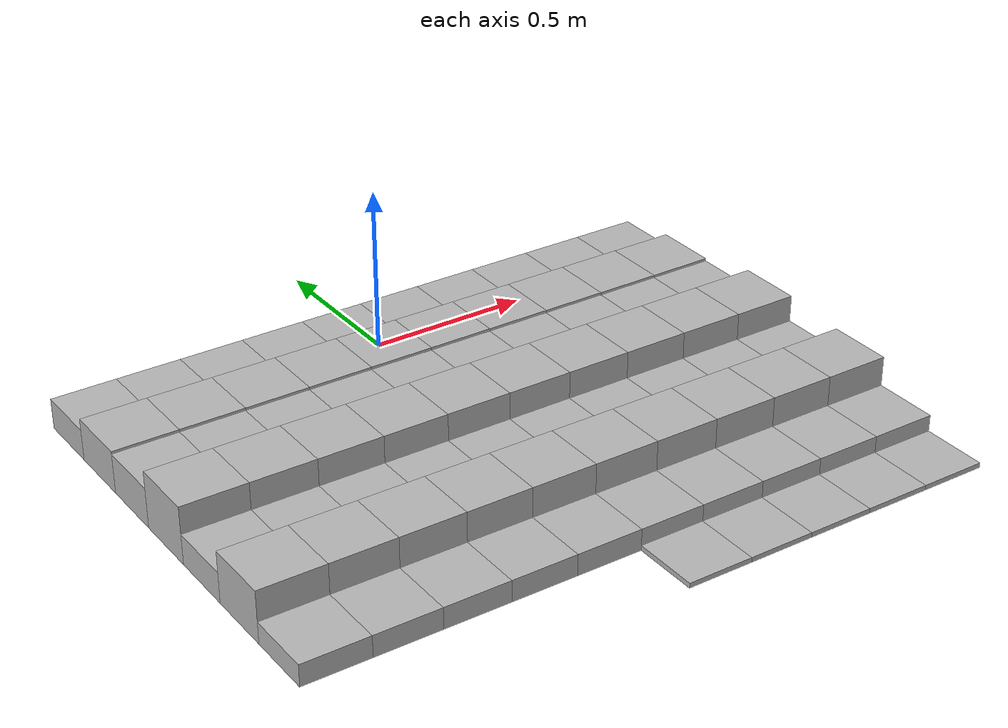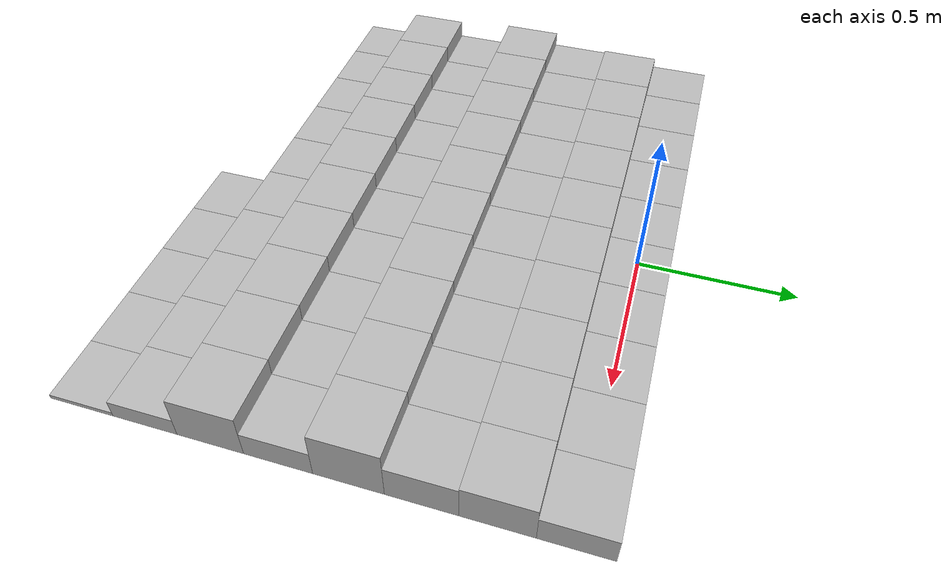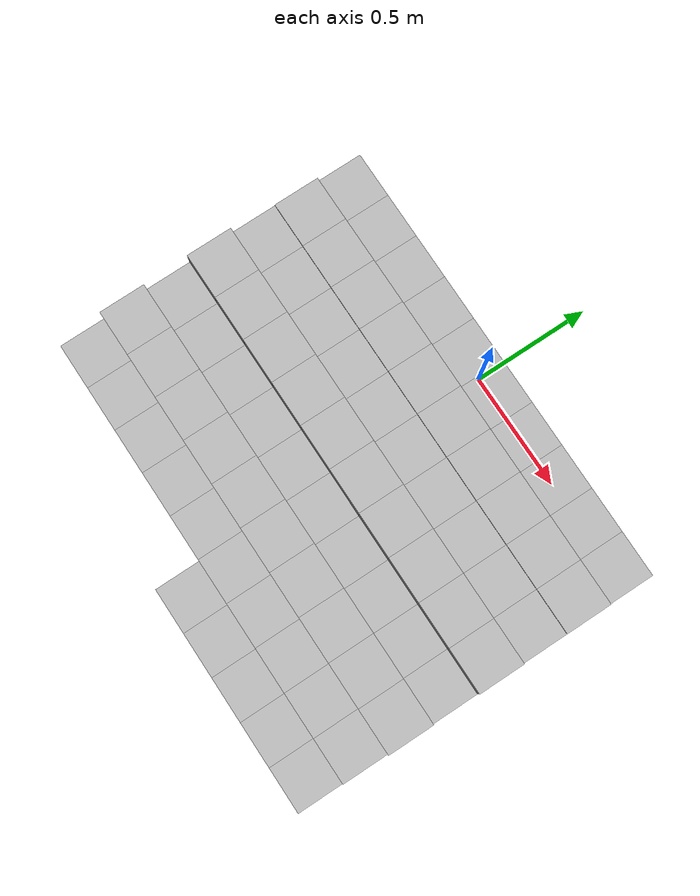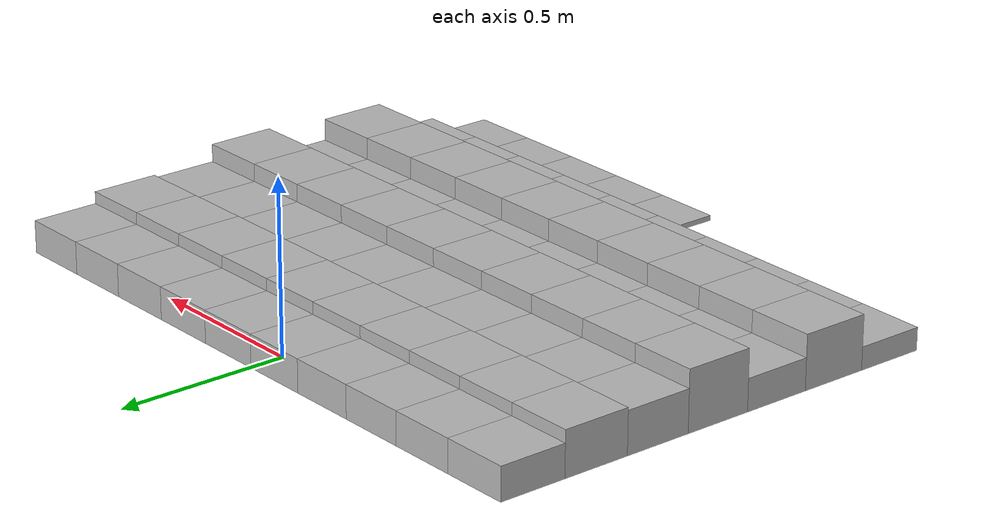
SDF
<sdf version="1.6">
 <model name="Terrain">
  <static>true</static>
  <link name="box_0_0">
   <pose>-0.9 0.0 0.0475072664775 0 0 0</pose>
   <inertial>
    <mass>1.0</mass>
    <inertia><ixx>0.0</ixx><ixy>0.0</ixy><ixz>0.0</ixz><iyy>0.0</iyy><iyz>0.0</iyz><izz>0.0</izz></inertia>
   </inertial>
   <collision name="collision"><geometry><box><size>0.2 0.2 0.0950145329551</size></box></geometry></collision>
   <visual name="visual"><geometry><box><size>0.2 0.2 0.0950145329551</size></box></geometry></visual>
  </link>
  <link name="box_0_1">
   <pose>-0.7 0.0 0.0475072664775 0 0 0</pose>
   <inertial>
    <mass>1.0</mass>
    <inertia><ixx>0.0</ixx><ixy>0.0</ixy><ixz>0.0</ixz><iyy>0.0</iyy><iyz>0.0</iyz><izz>0.0</izz></inertia>
   </inertial>
   <collision name="collision"><geometry><box><size>0.2 0.2 0.0950145329551</size></box></geometry></collision>
   <visual name="visual"><geometry><box><size>0.2 0.2 0.0950145329551</size></box></geometry></visual>
  </link>
  <link name="box_0_2">
   <pose>-0.5 0.0 0.0475072664775 0 0 0</pose>
   <inertial>
    <mass>1.0</mass>
    <inertia><ixx>0.0</ixx><ixy>0.0</ixy><ixz>0.0</ixz><iyy>0.0</iyy><iyz>0.0</iyz><izz>0.0</izz></inertia>
   </inertial>
   <collision name="collision"><geometry><box><size>0.2 0.2 0.0950145329551</size></box></geometry></collision>
   <visual name="visual"><geometry><box><size>0.2 0.2 0.0950145329551</size></box></geometry></visual>
  </link>
  <link name="box_0_3">
   <pose>-0.3 0.0 0.0475072664775 0 0 0</pose>
   <inertial>
    <mass>1.0</mass>
    <inertia><ixx>0.0</ixx><ixy>0.0</ixy><ixz>0.0</ixz><iyy>0.0</iyy><iyz>0.0</iyz><izz>0.0</izz></inertia>
   </inertial>
   <collision name="collision"><geometry><box><size>0.2 0.2 0.0950145329551</size></box></geometry></collision>
   <visual name="visual"><geometry><box><size>0.2 0.2 0.0950145329551</size></box></geometry></visual>
  </link>
  <link name="box_0_4">
   <pose>-0.1 0.0 0.0475072664775 0 0 0</pose>
   <inertial>
    <mass>1.0</mass>
    <inertia><ixx>0.0</ixx><ixy>0.0</ixy><ixz>0.0</ixz><iyy>0.0</iyy><iyz>0.0</iyz><izz>0.0</izz></inertia>
   </inertial>
   <collision name="collision"><geometry><box><size>0.2 0.2 0.0950145329551</size></box></geometry></collision>
   <visual name="visual"><geometry><box><size>0.2 0.2 0.0950145329551</size></box></geometry></visual>
  </link>
  <link name="box_0_5">
   <pose>0.1 0.0 0.0475072664775 0 0 0</pose>
   <inertial>
    <mass>1.0</mass>
    <inertia><ixx>0.0</ixx><ixy>0.0</ixy><ixz>0.0</ixz><iyy>0.0</iyy><iyz>0.0</iyz><izz>0.0</izz></inertia>
   </inertial>
   <collision name="collision"><geometry><box><size>0.2 0.2 0.0950145329551</size></box></geometry></collision>
   <visual name="visual"><geometry><box><size>0.2 0.2 0.0950145329551</size></box></geometry></visual>
  </link>
  <link name="box_0_6">
   <pose>0.3 0.0 0.0475072664775 0 0 0</pose>
   <inertial>
    <mass>1.0</mass>
    <inertia><ixx>0.0</ixx><ixy>0.0</ixy><ixz>0.0</ixz><iyy>0.0</iyy><iyz>0.0</iyz><izz>0.0</izz></inertia>
   </inertial>
   <collision name="collision"><geometry><box><size>0.2 0.2 0.0950145329551</size></box></geometry></collision>
   <visual name="visual"><geometry><box><size>0.2 0.2 0.0950145329551</size></box></geometry></visual>
  </link>
  <link name="box_0_7">
   <pose>0.5 0.0 0.0475072664775 0 0 0</pose>
   <inertial>
    <mass>1.0</mass>
    <inertia><ixx>0.0</ixx><ixy>0.0</ixy><ixz>0.0</ixz><iyy>0.0</iyy><iyz>0.0</iyz><izz>0.0</izz></inertia>
   </inertial>
   <collision name="collision"><geometry><box><size>0.2 0.2 0.0950145329551</size></box></geometry></collision>
   <visual name="visual"><geometry><box><size>0.2 0.2 0.0950145329551</size></box></geometry></visual>
  </link>
  <link name="box_0_8">
   <pose>0.7 0.0 0.0475072664775 0 0 0</pose>
   <inertial>
    <mass>1.0</mass>
    <inertia><ixx>0.0</ixx><ixy>0.0</ixy><ixz>0.0</ixz><iyy>0.0</iyy><iyz>0.0</iyz><izz>0.0</izz></inertia>
   </inertial>
   <collision name="collision"><geometry><box><size>0.2 0.2 0.0950145329551</size></box></geometry></collision>
   <visual name="visual"><geometry><box><size>0.2 0.2 0.0950145329551</size></box></geometry></visual>
  </link>
  <link name="box_0_9">
   <pose>0.9 0.0 0.0475072664775 0 0 0</pose>
   <inertial>
    <mass>1.0</mass>
    <inertia><ixx>0.0</ixx><ixy>0.0</ixy><ixz>0.0</ixz><iyy>0.0</iyy><iyz>0.0</iyz><izz>0.0</izz></inertia>
   </inertial>
   <collision name="collision"><geometry><box><size>0.2 0.2 0.0950145329551</size></box></geometry></collision>
   <visual name="visual"><geometry><box><size>0.2 0.2 0.0950145329551</size></box></geometry></visual>
  </link>
  <link name="box_1_0">
   <pose>-0.9 -0.2 0.0652670982909 0 0 0</pose>
   <inertial>
    <mass>1.0</mass>
    <inertia><ixx>0.0</ixx><ixy>0.0</ixy><ixz>0.0</ixz><iyy>0.0</iyy><iyz>0.0</iyz><izz>0.0</izz></inertia>
   </inertial>
   <collision name="collision"><geometry><box><size>0.2 0.2 0.130534196582</size></box></geometry></collision>
   <visual name="visual"><geometry><box><size>0.2 0.2 0.130534196582</size></box></geometry></visual>
  </link>
  <link name="box_1_1">
   <pose>-0.7 -0.2 0.0652670982909 0 0 0</pose>
   <inertial>
    <mass>1.0</mass>
    <inertia><ixx>0.0</ixx><ixy>0.0</ixy><ixz>0.0</ixz><iyy>0.0</iyy><iyz>0.0</iyz><izz>0.0</izz></inertia>
   </inertial>
   <collision name="collision"><geometry><box><size>0.2 0.2 0.130534196582</size></box></geometry></collision>
   <visual name="visual"><geometry><box><size>0.2 0.2 0.130534196582</size></box></geometry></visual>
  </link>
  <link name="box_1_2">
   <pose>-0.5 -0.2 0.0652670982909 0 0 0</pose>
   <inertial>
    <mass>1.0</mass>
    <inertia><ixx>0.0</ixx><ixy>0.0</ixy><ixz>0.0</ixz><iyy>0.0</iyy><iyz>0.0</iyz><izz>0.0</izz></inertia>
   </inertial>
   <collision name="collision"><geometry><box><size>0.2 0.2 0.130534196582</size></box></geometry></collision>
   <visual name="visual"><geometry><box><size>0.2 0.2 0.130534196582</size></box></geometry></visual>
  </link>
  <link name="box_1_3">
   <pose>-0.3 -0.2 0.0652670982909 0 0 0</pose>
   <inertial>
    <mass>1.0</mass>
    <inertia><ixx>0.0</ixx><ixy>0.0</ixy><ixz>0.0</ixz><iyy>0.0</iyy><iyz>0.0</iyz><izz>0.0</izz></inertia>
   </inertial>
   <collision name="collision"><geometry><box><size>0.2 0.2 0.130534196582</size></box></geometry></collision>
   <visual name="visual"><geometry><box><size>0.2 0.2 0.130534196582</size></box></geometry></visual>
  </link>
  <link name="box_1_4">
   <pose>-0.1 -0.2 0.0652670982909 0 0 0</pose>
   <inertial>
    <mass>1.0</mass>
    <inertia><ixx>0.0</ixx><ixy>0.0</ixy><ixz>0.0</ixz><iyy>0.0</iyy><iyz>0.0</iyz><izz>0.0</izz></inertia>
   </inertial>
   <collision name="collision"><geometry><box><size>0.2 0.2 0.130534196582</size></box></geometry></collision>
   <visual name="visual"><geometry><box><size>0.2 0.2 0.130534196582</size></box></geometry></visual>
  </link>
  <link name="box_1_5">
   <pose>0.1 -0.2 0.0652670982909 0 0 0</pose>
   <inertial>
    <mass>1.0</mass>
    <inertia><ixx>0.0</ixx><ixy>0.0</ixy><ixz>0.0</ixz><iyy>0.0</iyy><iyz>0.0</iyz><izz>0.0</izz></inertia>
   </inertial>
   <collision name="collision"><geometry><box><size>0.2 0.2 0.130534196582</size></box></geometry></collision>
   <visual name="visual"><geometry><box><size>0.2 0.2 0.130534196582</size></box></geometry></visual>
  </link>
  <link name="box_1_6">
   <pose>0.3 -0.2 0.0652670982909 0 0 0</pose>
   <inertial>
    <mass>1.0</mass>
    <inertia><ixx>0.0</ixx><ixy>0.0</ixy><ixz>0.0</ixz><iyy>0.0</iyy><iyz>0.0</iyz><izz>0.0</izz></inertia>
   </inertial>
   <collision name="collision"><geometry><box><size>0.2 0.2 0.130534196582</size></box></geometry></collision>
   <visual name="visual"><geometry><box><size>0.2 0.2 0.130534196582</size></box></geometry></visual>
  </link>
  <link name="box_1_7">
   <pose>0.5 -0.2 0.0652670982909 0 0 0</pose>
   <inertial>
    <mass>1.0</mass>
    <inertia><ixx>0.0</ixx><ixy>0.0</ixy><ixz>0.0</ixz><iyy>0.0</iyy><iyz>0.0</iyz><izz>0.0</izz></inertia>
   </inertial>
   <collision name="collision"><geometry><box><size>0.2 0.2 0.130534196582</size></box></geometry></collision>
   <visual name="visual"><geometry><box><size>0.2 0.2 0.130534196582</size></box></geometry></visual>
  </link>
  <link name="box_1_8">
   <pose>0.7 -0.2 0.0652670982909 0 0 0</pose>
   <inertial>
    <mass>1.0</mass>
    <inertia><ixx>0.0</ixx><ixy>0.0</ixy><ixz>0.0</ixz><iyy>0.0</iyy><iyz>0.0</iyz><izz>0.0</izz></inertia>
   </inertial>
   <collision name="collision"><geometry><box><size>0.2 0.2 0.130534196582</size></box></geometry></collision>
   <visual name="visual"><geometry><box><size>0.2 0.2 0.130534196582</size></box></geometry></visual>
  </link>
  <link name="box_1_9">
   <pose>0.9 -0.2 0.0652670982909 0 0 0</pose>
   <inertial>
    <mass>1.0</mass>
    <inertia><ixx>0.0</ixx><ixy>0.0</ixy><ixz>0.0</ixz><iyy>0.0</iyy><iyz>0.0</iyz><izz>0.0</izz></inertia>
   </inertial>
   <collision name="collision"><geometry><box><size>0.2 0.2 0.130534196582</size></box></geometry></collision>
   <visual name="visual"><geometry><box><size>0.2 0.2 0.130534196582</size></box></geometry></visual>
  </link>
  <link name="box_2_0">
   <pose>-0.9 -0.4 0.0612399300913 0 0 0</pose>
   <inertial>
    <mass>1.0</mass>
    <inertia><ixx>0.0</ixx><ixy>0.0</ixy><ixz>0.0</ixz><iyy>0.0</iyy><iyz>0.0</iyz><izz>0.0</izz></inertia>
   </inertial>
   <collision name="collision"><geometry><box><size>0.2 0.2 0.122479860183</size></box></geometry></collision>
   <visual name="visual"><geometry><box><size>0.2 0.2 0.122479860183</size></box></geometry></visual>
  </link>
  <link name="box_2_1">
   <pose>-0.7 -0.4 0.0612399300913 0 0 0</pose>
   <inertial>
    <mass>1.0</mass>
    <inertia><ixx>0.0</ixx><ixy>0.0</ixy><ixz>0.0</ixz><iyy>0.0</iyy><iyz>0.0</iyz><izz>0.0</izz></inertia>
   </inertial>
   <collision name="collision"><geometry><box><size>0.2 0.2 0.122479860183</size></box></geometry></collision>
   <visual name="visual"><geometry><box><size>0.2 0.2 0.122479860183</size></box></geometry></visual>
  </link>
  <link name="box_2_2">
   <pose>-0.5 -0.4 0.0612399300913 0 0 0</pose>
   <inertial>
    <mass>1.0</mass>
    <inertia><ixx>0.0</ixx><ixy>0.0</ixy><ixz>0.0</ixz><iyy>0.0</iyy><iyz>0.0</iyz><izz>0.0</izz></inertia>
   </inertial>
   <collision name="collision"><geometry><box><size>0.2 0.2 0.122479860183</size></box></geometry></collision>
   <visual name="visual"><geometry><box><size>0.2 0.2 0.122479860183</size></box></geometry></visual>
  </link>
  <link name="box_2_3">
   <pose>-0.3 -0.4 0.0612399300913 0 0 0</pose>
   <inertial>
    <mass>1.0</mass>
    <inertia><ixx>0.0</ixx><ixy>0.0</ixy><ixz>0.0</ixz><iyy>0.0</iyy><iyz>0.0</iyz><izz>0.0</izz></inertia>
   </inertial>
   <collision name="collision"><geometry><box><size>0.2 0.2 0.122479860183</size></box></geometry></collision>
   <visual name="visual"><geometry><box><size>0.2 0.2 0.122479860183</size></box></geometry></visual>
  </link>
  <link name="box_2_4">
   <pose>-0.1 -0.4 0.0612399300913 0 0 0</pose>
   <inertial>
    <mass>1.0</mass>
    <inertia><ixx>0.0</ixx><ixy>0.0</ixy><ixz>0.0</ixz><iyy>0.0</iyy><iyz>0.0</iyz><izz>0.0</izz></inertia>
   </inertial>
   <collision name="collision"><geometry><box><size>0.2 0.2 0.122479860183</size></box></geometry></collision>
   <visual name="visual"><geometry><box><size>0.2 0.2 0.122479860183</size></box></geometry></visual>
  </link>
  <link name="box_2_5">
   <pose>0.1 -0.4 0.0612399300913 0 0 0</pose>
   <inertial>
    <mass>1.0</mass>
    <inertia><ixx>0.0</ixx><ixy>0.0</ixy><ixz>0.0</ixz><iyy>0.0</iyy><iyz>0.0</iyz><izz>0.0</izz></inertia>
   </inertial>
   <collision name="collision"><geometry><box><size>0.2 0.2 0.122479860183</size></box></geometry></collision>
   <visual name="visual"><geometry><box><size>0.2 0.2 0.122479860183</size></box></geometry></visual>
  </link>
  <link name="box_2_6">
   <pose>0.3 -0.4 0.0612399300913 0 0 0</pose>
   <inertial>
    <mass>1.0</mass>
    <inertia><ixx>0.0</ixx><ixy>0.0</ixy><ixz>0.0</ixz><iyy>0.0</iyy><iyz>0.0</iyz><izz>0.0</izz></inertia>
   </inertial>
   <collision name="collision"><geometry><box><size>0.2 0.2 0.122479860183</size></box></geometry></collision>
   <visual name="visual"><geometry><box><size>0.2 0.2 0.122479860183</size></box></geometry></visual>
  </link>
  <link name="box_2_7">
   <pose>0.5 -0.4 0.0612399300913 0 0 0</pose>
   <inertial>
    <mass>1.0</mass>
    <inertia><ixx>0.0</ixx><ixy>0.0</ixy><ixz>0.0</ixz><iyy>0.0</iyy><iyz>0.0</iyz><izz>0.0</izz></inertia>
   </inertial>
   <collision name="collision"><geometry><box><size>0.2 0.2 0.122479860183</size></box></geometry></collision>
   <visual name="visual"><geometry><box><size>0.2 0.2 0.122479860183</size></box></geometry></visual>
  </link>
  <link name="box_2_8">
   <pose>0.7 -0.4 0.0612399300913 0 0 0</pose>
   <inertial>
    <mass>1.0</mass>
    <inertia><ixx>0.0</ixx><ixy>0.0</ixy><ixz>0.0</ixz><iyy>0.0</iyy><iyz>0.0</iyz><izz>0.0</izz></inertia>
   </inertial>
   <collision name="collision"><geometry><box><size>0.2 0.2 0.122479860183</size></box></geometry></collision>
   <visual name="visual"><geometry><box><size>0.2 0.2 0.122479860183</size></box></geometry></visual>
  </link>
  <link name="box_2_9">
   <pose>0.9 -0.4 0.0612399300913 0 0 0</pose>
   <inertial>
    <mass>1.0</mass>
    <inertia><ixx>0.0</ixx><ixy>0.0</ixy><ixz>0.0</ixz><iyy>0.0</iyy><iyz>0.0</iyz><izz>0.0</izz></inertia>
   </inertial>
   <collision name="collision"><geometry><box><size>0.2 0.2 0.122479860183</size></box></geometry></collision>
   <visual name="visual"><geometry><box><size>0.2 0.2 0.122479860183</size></box></geometry></visual>
  </link>
  <link name="box_3_0">
   <pose>-0.9 -0.6 0.0875188280004 0 0 0</pose>
   <inertial>
    <mass>1.0</mass>
    <inertia><ixx>0.0</ixx><ixy>0.0</ixy><ixz>0.0</ixz><iyy>0.0</iyy><iyz>0.0</iyz><izz>0.0</izz></inertia>
   </inertial>
   <collision name="collision"><geometry><box><size>0.2 0.2 0.175037656001</size></box></geometry></collision>
   <visual name="visual"><geometry><box><size>0.2 0.2 0.175037656001</size></box></geometry></visual>
  </link>
  <link name="box_3_1">
   <pose>-0.7 -0.6 0.0875188280004 0 0 0</pose>
   <inertial>
    <mass>1.0</mass>
    <inertia><ixx>0.0</ixx><ixy>0.0</ixy><ixz>0.0</ixz><iyy>0.0</iyy><iyz>0.0</iyz><izz>0.0</izz></inertia>
   </inertial>
   <collision name="collision"><geometry><box><size>0.2 0.2 0.175037656001</size></box></geometry></collision>
   <visual name="visual"><geometry><box><size>0.2 0.2 0.175037656001</size></box></geometry></visual>
  </link>
  <link name="box_3_2">
   <pose>-0.5 -0.6 0.0875188280004 0 0 0</pose>
   <inertial>
    <mass>1.0</mass>
    <inertia><ixx>0.0</ixx><ixy>0.0</ixy><ixz>0.0</ixz><iyy>0.0</iyy><iyz>0.0</iyz><izz>0.0</izz></inertia>
   </inertial>
   <collision name="collision"><geometry><box><size>0.2 0.2 0.175037656001</size></box></geometry></collision>
   <visual name="visual"><geometry><box><size>0.2 0.2 0.175037656001</size></box></geometry></visual>
  </link>
  <link name="box_3_3">
   <pose>-0.3 -0.6 0.0875188280004 0 0 0</pose>
   <inertial>
    <mass>1.0</mass>
    <inertia><ixx>0.0</ixx><ixy>0.0</ixy><ixz>0.0</ixz><iyy>0.0</iyy><iyz>0.0</iyz><izz>0.0</izz></inertia>
   </inertial>
   <collision name="collision"><geometry><box><size>0.2 0.2 0.175037656001</size></box></geometry></collision>
   <visual name="visual"><geometry><box><size>0.2 0.2 0.175037656001</size></box></geometry></visual>
  </link>
  <link name="box_3_4">
   <pose>-0.1 -0.6 0.0875188280004 0 0 0</pose>
   <inertial>
    <mass>1.0</mass>
    <inertia><ixx>0.0</ixx><ixy>0.0</ixy><ixz>0.0</ixz><iyy>0.0</iyy><iyz>0.0</iyz><izz>0.0</izz></inertia>
   </inertial>
   <collision name="collision"><geometry><box><size>0.2 0.2 0.175037656001</size></box></geometry></collision>
   <visual name="visual"><geometry><box><size>0.2 0.2 0.175037656001</size></box></geometry></visual>
  </link>
  <link name="box_3_5">
   <pose>0.1 -0.6 0.0875188280004 0 0 0</pose>
   <inertial>
    <mass>1.0</mass>
    <inertia><ixx>0.0</ixx><ixy>0.0</ixy><ixz>0.0</ixz><iyy>0.0</iyy><iyz>0.0</iyz><izz>0.0</izz></inertia>
   </inertial>
   <collision name="collision"><geometry><box><size>0.2 0.2 0.175037656001</size></box></geometry></collision>
   <visual name="visual"><geometry><box><size>0.2 0.2 0.175037656001</size></box></geometry></visual>
  </link>
  <link name="box_3_6">
   <pose>0.3 -0.6 0.0875188280004 0 0 0</pose>
   <inertial>
    <mass>1.0</mass>
    <inertia><ixx>0.0</ixx><ixy>0.0</ixy><ixz>0.0</ixz><iyy>0.0</iyy><iyz>0.0</iyz><izz>0.0</izz></inertia>
   </inertial>
   <collision name="collision"><geometry><box><size>0.2 0.2 0.175037656001</size></box></geometry></collision>
   <visual name="visual"><geometry><box><size>0.2 0.2 0.175037656001</size></box></geometry></visual>
  </link>
  <link name="box_3_7">
   <pose>0.5 -0.6 0.0875188280004 0 0 0</pose>
   <inertial>
    <mass>1.0</mass>
    <inertia><ixx>0.0</ixx><ixy>0.0</ixy><ixz>0.0</ixz><iyy>0.0</iyy><iyz>0.0</iyz><izz>0.0</izz></inertia>
   </inertial>
   <collision name="collision"><geometry><box><size>0.2 0.2 0.175037656001</size></box></geometry></collision>
   <visual name="visual"><geometry><box><size>0.2 0.2 0.175037656001</size></box></geometry></visual>
  </link>
  <link name="box_3_8">
   <pose>0.7 -0.6 0.0875188280004 0 0 0</pose>
   <inertial>
    <mass>1.0</mass>
    <inertia><ixx>0.0</ixx><ixy>0.0</ixy><ixz>0.0</ixz><iyy>0.0</iyy><iyz>0.0</iyz><izz>0.0</izz></inertia>
   </inertial>
   <collision name="collision"><geometry><box><size>0.2 0.2 0.175037656001</size></box></geometry></collision>
   <visual name="visual"><geometry><box><size>0.2 0.2 0.175037656001</size></box></geometry></visual>
  </link>
  <link name="box_3_9">
   <pose>0.9 -0.6 0.0875188280004 0 0 0</pose>
   <inertial>
    <mass>1.0</mass>
    <inertia><ixx>0.0</ixx><ixy>0.0</ixy><ixz>0.0</ixz><iyy>0.0</iyy><iyz>0.0</iyz><izz>0.0</izz></inertia>
   </inertial>
   <collision name="collision"><geometry><box><size>0.2 0.2 0.175037656001</size></box></geometry></collision>
   <visual name="visual"><geometry><box><size>0.2 0.2 0.175037656001</size></box></geometry></visual>
  </link>
  <link name="box_4_0">
   <pose>-0.9 -0.8 0.0461454783794 0 0 0</pose>
   <inertial>
    <mass>1.0</mass>
    <inertia><ixx>0.0</ixx><ixy>0.0</ixy><ixz>0.0</ixz><iyy>0.0</iyy><iyz>0.0</iyz><izz>0.0</izz></inertia>
   </inertial>
   <collision name="collision"><geometry><box><size>0.2 0.2 0.0922909567588</size></box></geometry></collision>
   <visual name="visual"><geometry><box><size>0.2 0.2 0.0922909567588</size></box></geometry></visual>
  </link>
  <link name="box_4_1">
   <pose>-0.7 -0.8 0.0461454783794 0 0 0</pose>
   <inertial>
    <mass>1.0</mass>
    <inertia><ixx>0.0</ixx><ixy>0.0</ixy><ixz>0.0</ixz><iyy>0.0</iyy><iyz>0.0</iyz><izz>0.0</izz></inertia>
   </inertial>
   <collision name="collision"><geometry><box><size>0.2 0.2 0.0922909567588</size></box></geometry></collision>
   <visual name="visual"><geometry><box><size>0.2 0.2 0.0922909567588</size></box></geometry></visual>
  </link>
  <link name="box_4_2">
   <pose>-0.5 -0.8 0.0461454783794 0 0 0</pose>
   <inertial>
    <mass>1.0</mass>
    <inertia><ixx>0.0</ixx><ixy>0.0</ixy><ixz>0.0</ixz><iyy>0.0</iyy><iyz>0.0</iyz><izz>0.0</izz></inertia>
   </inertial>
   <collision name="collision"><geometry><box><size>0.2 0.2 0.0922909567588</size></box></geometry></collision>
   <visual name="visual"><geometry><box><size>0.2 0.2 0.0922909567588</size></box></geometry></visual>
  </link>
  <link name="box_4_3">
   <pose>-0.3 -0.8 0.0461454783794 0 0 0</pose>
   <inertial>
    <mass>1.0</mass>
    <inertia><ixx>0.0</ixx><ixy>0.0</ixy><ixz>0.0</ixz><iyy>0.0</iyy><iyz>0.0</iyz><izz>0.0</izz></inertia>
   </inertial>
   <collision name="collision"><geometry><box><size>0.2 0.2 0.0922909567588</size></box></geometry></collision>
   <visual name="visual"><geometry><box><size>0.2 0.2 0.0922909567588</size></box></geometry></visual>
  </link>
  <link name="box_4_4">
   <pose>-0.1 -0.8 0.0461454783794 0 0 0</pose>
   <inertial>
    <mass>1.0</mass>
    <inertia><ixx>0.0</ixx><ixy>0.0</ixy><ixz>0.0</ixz><iyy>0.0</iyy><iyz>0.0</iyz><izz>0.0</izz></inertia>
   </inertial>
   <collision name="collision"><geometry><box><size>0.2 0.2 0.0922909567588</size></box></geometry></collision>
   <visual name="visual"><geometry><box><size>0.2 0.2 0.0922909567588</size></box></geometry></visual>
  </link>
  <link name="box_4_5">
   <pose>0.1 -0.8 0.0461454783794 0 0 0</pose>
   <inertial>
    <mass>1.0</mass>
    <inertia><ixx>0.0</ixx><ixy>0.0</ixy><ixz>0.0</ixz><iyy>0.0</iyy><iyz>0.0</iyz><izz>0.0</izz></inertia>
   </inertial>
   <collision name="collision"><geometry><box><size>0.2 0.2 0.0922909567588</size></box></geometry></collision>
   <visual name="visual"><geometry><box><size>0.2 0.2 0.0922909567588</size></box></geometry></visual>
  </link>
  <link name="box_4_6">
   <pose>0.3 -0.8 0.0461454783794 0 0 0</pose>
   <inertial>
    <mass>1.0</mass>
    <inertia><ixx>0.0</ixx><ixy>0.0</ixy><ixz>0.0</ixz><iyy>0.0</iyy><iyz>0.0</iyz><izz>0.0</izz></inertia>
   </inertial>
   <collision name="collision"><geometry><box><size>0.2 0.2 0.0922909567588</size></box></geometry></collision>
   <visual name="visual"><geometry><box><size>0.2 0.2 0.0922909567588</size></box></geometry></visual>
  </link>
  <link name="box_4_7">
   <pose>0.5 -0.8 0.0461454783794 0 0 0</pose>
   <inertial>
    <mass>1.0</mass>
    <inertia><ixx>0.0</ixx><ixy>0.0</ixy><ixz>0.0</ixz><iyy>0.0</iyy><iyz>0.0</iyz><izz>0.0</izz></inertia>
   </inertial>
   <collision name="collision"><geometry><box><size>0.2 0.2 0.0922909567588</size></box></geometry></collision>
   <visual name="visual"><geometry><box><size>0.2 0.2 0.0922909567588</size></box></geometry></visual>
  </link>
  <link name="box_4_8">
   <pose>0.7 -0.8 0.0461454783794 0 0 0</pose>
   <inertial>
    <mass>1.0</mass>
    <inertia><ixx>0.0</ixx><ixy>0.0</ixy><ixz>0.0</ixz><iyy>0.0</iyy><iyz>0.0</iyz><izz>0.0</izz></inertia>
   </inertial>
   <collision name="collision"><geometry><box><size>0.2 0.2 0.0922909567588</size></box></geometry></collision>
   <visual name="visual"><geometry><box><size>0.2 0.2 0.0922909567588</size></box></geometry></visual>
  </link>
  <link name="box_4_9">
   <pose>0.9 -0.8 0.0461454783794 0 0 0</pose>
   <inertial>
    <mass>1.0</mass>
    <inertia><ixx>0.0</ixx><ixy>0.0</ixy><ixz>0.0</ixz><iyy>0.0</iyy><iyz>0.0</iyz><izz>0.0</izz></inertia>
   </inertial>
   <collision name="collision"><geometry><box><size>0.2 0.2 0.0922909567588</size></box></geometry></collision>
   <visual name="visual"><geometry><box><size>0.2 0.2 0.0922909567588</size></box></geometry></visual>
  </link>
  <link name="box_5_0">
   <pose>-0.9 -1.0 0.0783267230446 0 0 0</pose>
   <inertial>
    <mass>1.0</mass>
    <inertia><ixx>0.0</ixx><ixy>0.0</ixy><ixz>0.0</ixz><iyy>0.0</iyy><iyz>0.0</iyz><izz>0.0</izz></inertia>
   </inertial>
   <collision name="collision"><geometry><box><size>0.2 0.2 0.156653446089</size></box></geometry></collision>
   <visual name="visual"><geometry><box><size>0.2 0.2 0.156653446089</size></box></geometry></visual>
  </link>
  <link name="box_5_1">
   <pose>-0.7 -1.0 0.0783267230446 0 0 0</pose>
   <inertial>
    <mass>1.0</mass>
    <inertia><ixx>0.0</ixx><ixy>0.0</ixy><ixz>0.0</ixz><iyy>0.0</iyy><iyz>0.0</iyz><izz>0.0</izz></inertia>
   </inertial>
   <collision name="collision"><geometry><box><size>0.2 0.2 0.156653446089</size></box></geometry></collision>
   <visual name="visual"><geometry><box><size>0.2 0.2 0.156653446089</size></box></geometry></visual>
  </link>
  <link name="box_5_2">
   <pose>-0.5 -1.0 0.0783267230446 0 0 0</pose>
   <inertial>
    <mass>1.0</mass>
    <inertia><ixx>0.0</ixx><ixy>0.0</ixy><ixz>0.0</ixz><iyy>0.0</iyy><iyz>0.0</iyz><izz>0.0</izz></inertia>
   </inertial>
   <collision name="collision"><geometry><box><size>0.2 0.2 0.156653446089</size></box></geometry></collision>
   <visual name="visual"><geometry><box><size>0.2 0.2 0.156653446089</size></box></geometry></visual>
  </link>
  <link name="box_5_3">
   <pose>-0.3 -1.0 0.0783267230446 0 0 0</pose>
   <inertial>
    <mass>1.0</mass>
    <inertia><ixx>0.0</ixx><ixy>0.0</ixy><ixz>0.0</ixz><iyy>0.0</iyy><iyz>0.0</iyz><izz>0.0</izz></inertia>
   </inertial>
   <collision name="collision"><geometry><box><size>0.2 0.2 0.156653446089</size></box></geometry></collision>
   <visual name="visual"><geometry><box><size>0.2 0.2 0.156653446089</size></box></geometry></visual>
  </link>
  <link name="box_5_4">
   <pose>-0.1 -1.0 0.0783267230446 0 0 0</pose>
   <inertial>
    <mass>1.0</mass>
    <inertia><ixx>0.0</ixx><ixy>0.0</ixy><ixz>0.0</ixz><iyy>0.0</iyy><iyz>0.0</iyz><izz>0.0</izz></inertia>
   </inertial>
   <collision name="collision"><geometry><box><size>0.2 0.2 0.156653446089</size></box></geometry></collision>
   <visual name="visual"><geometry><box><size>0.2 0.2 0.156653446089</size></box></geometry></visual>
  </link>
  <link name="box_5_5">
   <pose>0.1 -1.0 0.0783267230446 0 0 0</pose>
   <inertial>
    <mass>1.0</mass>
    <inertia><ixx>0.0</ixx><ixy>0.0</ixy><ixz>0.0</ixz><iyy>0.0</iyy><iyz>0.0</iyz><izz>0.0</izz></inertia>
   </inertial>
   <collision name="collision"><geometry><box><size>0.2 0.2 0.156653446089</size></box></geometry></collision>
   <visual name="visual"><geometry><box><size>0.2 0.2 0.156653446089</size></box></geometry></visual>
  </link>
  <link name="box_5_6">
   <pose>0.3 -1.0 0.0783267230446 0 0 0</pose>
   <inertial>
    <mass>1.0</mass>
    <inertia><ixx>0.0</ixx><ixy>0.0</ixy><ixz>0.0</ixz><iyy>0.0</iyy><iyz>0.0</iyz><izz>0.0</izz></inertia>
   </inertial>
   <collision name="collision"><geometry><box><size>0.2 0.2 0.156653446089</size></box></geometry></collision>
   <visual name="visual"><geometry><box><size>0.2 0.2 0.156653446089</size></box></geometry></visual>
  </link>
  <link name="box_5_7">
   <pose>0.5 -1.0 0.0783267230446 0 0 0</pose>
   <inertial>
    <mass>1.0</mass>
    <inertia><ixx>0.0</ixx><ixy>0.0</ixy><ixz>0.0</ixz><iyy>0.0</iyy><iyz>0.0</iyz><izz>0.0</izz></inertia>
   </inertial>
   <collision name="collision"><geometry><box><size>0.2 0.2 0.156653446089</size></box></geometry></collision>
   <visual name="visual"><geometry><box><size>0.2 0.2 0.156653446089</size></box></geometry></visual>
  </link>
  <link name="box_5_8">
   <pose>0.7 -1.0 0.0783267230446 0 0 0</pose>
   <inertial>
    <mass>1.0</mass>
    <inertia><ixx>0.0</ixx><ixy>0.0</ixy><ixz>0.0</ixz><iyy>0.0</iyy><iyz>0.0</iyz><izz>0.0</izz></inertia>
   </inertial>
   <collision name="collision"><geometry><box><size>0.2 0.2 0.156653446089</size></box></geometry></collision>
   <visual name="visual"><geometry><box><size>0.2 0.2 0.156653446089</size></box></geometry></visual>
  </link>
  <link name="box_5_9">
   <pose>0.9 -1.0 0.0783267230446 0 0 0</pose>
   <inertial>
    <mass>1.0</mass>
    <inertia><ixx>0.0</ixx><ixy>0.0</ixy><ixz>0.0</ixz><iyy>0.0</iyy><iyz>0.0</iyz><izz>0.0</izz></inertia>
   </inertial>
   <collision name="collision"><geometry><box><size>0.2 0.2 0.156653446089</size></box></geometry></collision>
   <visual name="visual"><geometry><box><size>0.2 0.2 0.156653446089</size></box></geometry></visual>
  </link>
  <link name="box_6_0">
   <pose>-0.9 -1.2 0.0327660177625 0 0 0</pose>
   <inertial>
    <mass>1.0</mass>
    <inertia><ixx>0.0</ixx><ixy>0.0</ixy><ixz>0.0</ixz><iyy>0.0</iyy><iyz>0.0</iyz><izz>0.0</izz></inertia>
   </inertial>
   <collision name="collision"><geometry><box><size>0.2 0.2 0.0655320355251</size></box></geometry></collision>
   <visual name="visual"><geometry><box><size>0.2 0.2 0.0655320355251</size></box></geometry></visual>
  </link>
  <link name="box_6_1">
   <pose>-0.7 -1.2 0.0327660177625 0 0 0</pose>
   <inertial>
    <mass>1.0</mass>
    <inertia><ixx>0.0</ixx><ixy>0.0</ixy><ixz>0.0</ixz><iyy>0.0</iyy><iyz>0.0</iyz><izz>0.0</izz></inertia>
   </inertial>
   <collision name="collision"><geometry><box><size>0.2 0.2 0.0655320355251</size></box></geometry></collision>
   <visual name="visual"><geometry><box><size>0.2 0.2 0.0655320355251</size></box></geometry></visual>
  </link>
  <link name="box_6_2">
   <pose>-0.5 -1.2 0.0327660177625 0 0 0</pose>
   <inertial>
    <mass>1.0</mass>
    <inertia><ixx>0.0</ixx><ixy>0.0</ixy><ixz>0.0</ixz><iyy>0.0</iyy><iyz>0.0</iyz><izz>0.0</izz></inertia>
   </inertial>
   <collision name="collision"><geometry><box><size>0.2 0.2 0.0655320355251</size></box></geometry></collision>
   <visual name="visual"><geometry><box><size>0.2 0.2 0.0655320355251</size></box></geometry></visual>
  </link>
  <link name="box_6_3">
   <pose>-0.3 -1.2 0.0327660177625 0 0 0</pose>
   <inertial>
    <mass>1.0</mass>
    <inertia><ixx>0.0</ixx><ixy>0.0</ixy><ixz>0.0</ixz><iyy>0.0</iyy><iyz>0.0</iyz><izz>0.0</izz></inertia>
   </inertial>
   <collision name="collision"><geometry><box><size>0.2 0.2 0.0655320355251</size></box></geometry></collision>
   <visual name="visual"><geometry><box><size>0.2 0.2 0.0655320355251</size></box></geometry></visual>
  </link>
  <link name="box_6_4">
   <pose>-0.1 -1.2 0.0327660177625 0 0 0</pose>
   <inertial>
    <mass>1.0</mass>
    <inertia><ixx>0.0</ixx><ixy>0.0</ixy><ixz>0.0</ixz><iyy>0.0</iyy><iyz>0.0</iyz><izz>0.0</izz></inertia>
   </inertial>
   <collision name="collision"><geometry><box><size>0.2 0.2 0.0655320355251</size></box></geometry></collision>
   <visual name="visual"><geometry><box><size>0.2 0.2 0.0655320355251</size></box></geometry></visual>
  </link>
  <link name="box_6_5">
   <pose>0.1 -1.2 0.0327660177625 0 0 0</pose>
   <inertial>
    <mass>1.0</mass>
    <inertia><ixx>0.0</ixx><ixy>0.0</ixy><ixz>0.0</ixz><iyy>0.0</iyy><iyz>0.0</iyz><izz>0.0</izz></inertia>
   </inertial>
   <collision name="collision"><geometry><box><size>0.2 0.2 0.0655320355251</size></box></geometry></collision>
   <visual name="visual"><geometry><box><size>0.2 0.2 0.0655320355251</size></box></geometry></visual>
  </link>
  <link name="box_6_6">
   <pose>0.3 -1.2 0.0327660177625 0 0 0</pose>
   <inertial>
    <mass>1.0</mass>
    <inertia><ixx>0.0</ixx><ixy>0.0</ixy><ixz>0.0</ixz><iyy>0.0</iyy><iyz>0.0</iyz><izz>0.0</izz></inertia>
   </inertial>
   <collision name="collision"><geometry><box><size>0.2 0.2 0.0655320355251</size></box></geometry></collision>
   <visual name="visual"><geometry><box><size>0.2 0.2 0.0655320355251</size></box></geometry></visual>
  </link>
  <link name="box_6_7">
   <pose>0.5 -1.2 0.0327660177625 0 0 0</pose>
   <inertial>
    <mass>1.0</mass>
    <inertia><ixx>0.0</ixx><ixy>0.0</ixy><ixz>0.0</ixz><iyy>0.0</iyy><iyz>0.0</iyz><izz>0.0</izz></inertia>
   </inertial>
   <collision name="collision"><geometry><box><size>0.2 0.2 0.0655320355251</size></box></geometry></collision>
   <visual name="visual"><geometry><box><size>0.2 0.2 0.0655320355251</size></box></geometry></visual>
  </link>
  <link name="box_6_8">
   <pose>0.7 -1.2 0.0327660177625 0 0 0</pose>
   <inertial>
    <mass>1.0</mass>
    <inertia><ixx>0.0</ixx><ixy>0.0</ixy><ixz>0.0</ixz><iyy>0.0</iyy><iyz>0.0</iyz><izz>0.0</izz></inertia>
   </inertial>
   <collision name="collision"><geometry><box><size>0.2 0.2 0.0655320355251</size></box></geometry></collision>
   <visual name="visual"><geometry><box><size>0.2 0.2 0.0655320355251</size></box></geometry></visual>
  </link>
  <link name="box_6_9">
   <pose>0.9 -1.2 0.0327660177625 0 0 0</pose>
   <inertial>
    <mass>1.0</mass>
    <inertia><ixx>0.0</ixx><ixy>0.0</ixy><ixz>0.0</ixz><iyy>0.0</iyy><iyz>0.0</iyz><izz>0.0</izz></inertia>
   </inertial>
   <collision name="collision"><geometry><box><size>0.2 0.2 0.0655320355251</size></box></geometry></collision>
   <visual name="visual"><geometry><box><size>0.2 0.2 0.0655320355251</size></box></geometry></visual>
  </link>
  <link name="box_7_5">
   <pose>0.1 -1.4 0.0075755849345 0 0 0</pose>
   <inertial>
    <mass>1.0</mass>
    <inertia><ixx>0.0</ixx><ixy>0.0</ixy><ixz>0.0</ixz><iyy>0.0</iyy><iyz>0.0</iyz><izz>0.0</izz></inertia>
   </inertial>
   <collision name="collision"><geometry><box><size>0.2 0.2 0.015151169869</size></box></geometry></collision>
   <visual name="visual"><geometry><box><size>0.2 0.2 0.015151169869</size></box></geometry></visual>
  </link>
  <link name="box_7_6">
   <pose>0.3 -1.4 0.0075755849345 0 0 0</pose>
   <inertial>
    <mass>1.0</mass>
    <inertia><ixx>0.0</ixx><ixy>0.0</ixy><ixz>0.0</ixz><iyy>0.0</iyy><iyz>0.0</iyz><izz>0.0</izz></inertia>
   </inertial>
   <collision name="collision"><geometry><box><size>0.2 0.2 0.015151169869</size></box></geometry></collision>
   <visual name="visual"><geometry><box><size>0.2 0.2 0.015151169869</size></box></geometry></visual>
  </link>
  <link name="box_7_7">
   <pose>0.5 -1.4 0.0075755849345 0 0 0</pose>
   <inertial>
    <mass>1.0</mass>
    <inertia><ixx>0.0</ixx><ixy>0.0</ixy><ixz>0.0</ixz><iyy>0.0</iyy><iyz>0.0</iyz><izz>0.0</izz></inertia>
   </inertial>
   <collision name="collision"><geometry><box><size>0.2 0.2 0.015151169869</size></box></geometry></collision>
   <visual name="visual"><geometry><box><size>0.2 0.2 0.015151169869</size></box></geometry></visual>
  </link>
  <link name="box_7_8">
   <pose>0.7 -1.4 0.0075755849345 0 0 0</pose>
   <inertial>
    <mass>1.0</mass>
    <inertia><ixx>0.0</ixx><ixy>0.0</ixy><ixz>0.0</ixz><iyy>0.0</iyy><iyz>0.0</iyz><izz>0.0</izz></inertia>
   </inertial>
   <collision name="collision"><geometry><box><size>0.2 0.2 0.015151169869</size></box></geometry></collision>
   <visual name="visual"><geometry><box><size>0.2 0.2 0.015151169869</size></box></geometry></visual>
  </link>
  <link name="box_7_9">
   <pose>0.9 -1.4 0.0075755849345 0 0 0</pose>
   <inertial>
    <mass>1.0</mass>
    <inertia><ixx>0.0</ixx><ixy>0.0</ixy><ixz>0.0</ixz><iyy>0.0</iyy><iyz>0.0</iyz><izz>0.0</izz></inertia>
   </inertial>
   <collision name="collision"><geometry><box><size>0.2 0.2 0.015151169869</size></box></geometry></collision>
   <visual name="visual"><geometry><box><size>0.2 0.2 0.015151169869</size></box></geometry></visual>
  </link>
 </model>
</sdf>
